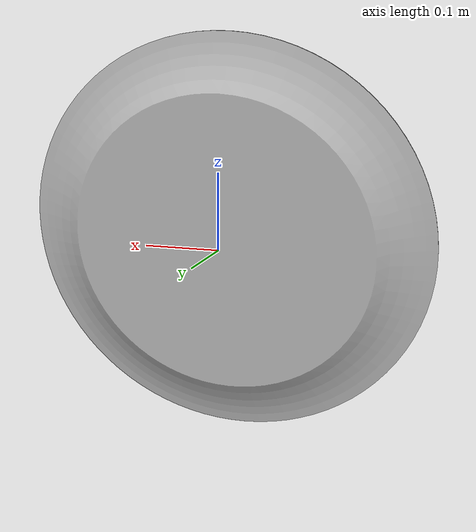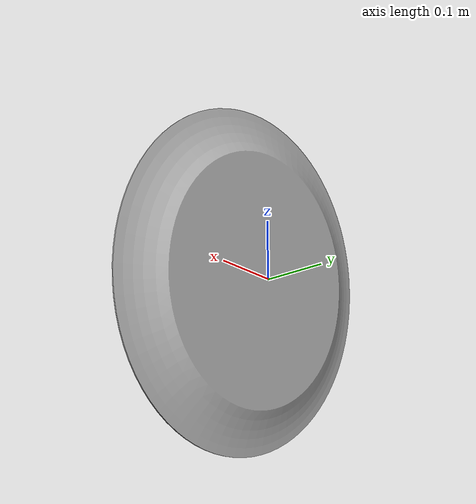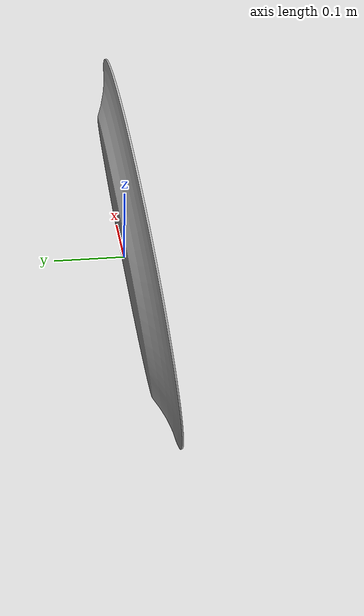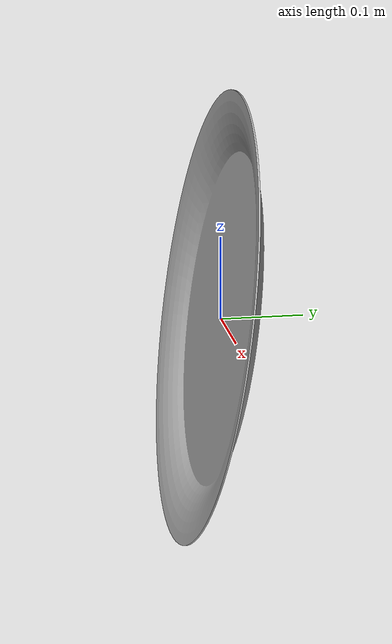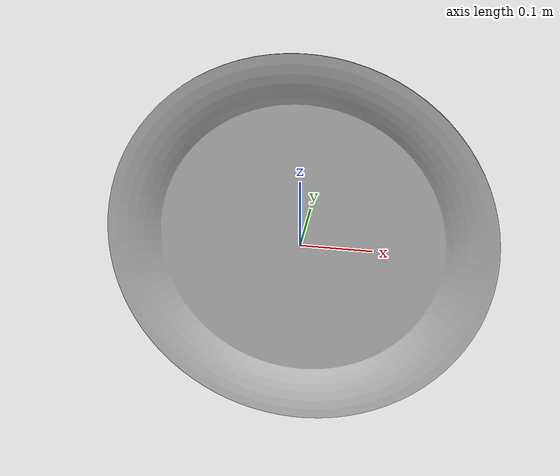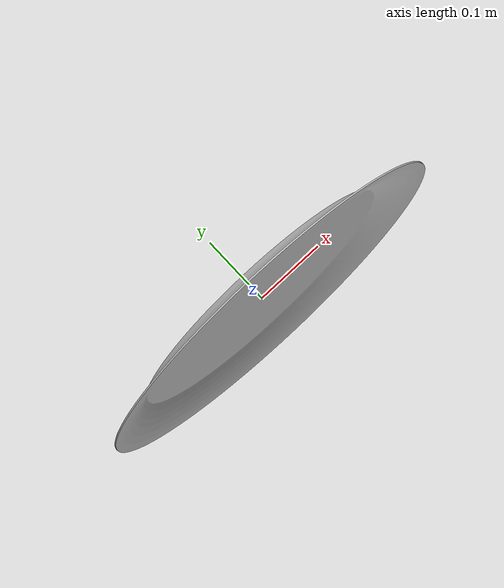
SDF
<?xml version="1.0" ?>
<sdf version="1.6">
  <model name="plate">
    <static>false</static>
    <link name="link">
      <collision name="collision">
        <!-- Offset applied here to align feet to ground -->
        <pose>0 0 0 1.41 0 0</pose>
        <geometry>
          <mesh>
            <uri>model://plate/meshes/plate.stl</uri>
            <scale>0.001 0.001 0.001</scale>
          </mesh>
        </geometry>
      </collision>

      <visual name="visual">
        <!-- Offset applied here to align feet to ground -->
        <pose>0 0 0 1.41 0 0</pose>
        <geometry>
          <mesh>
            <uri>model://plate/meshes/plate.stl</uri>
            <scale>0.001 0.001 0.001</scale>
          </mesh>
        </geometry>
      </visual>
    </link>
  </model>
</sdf>
